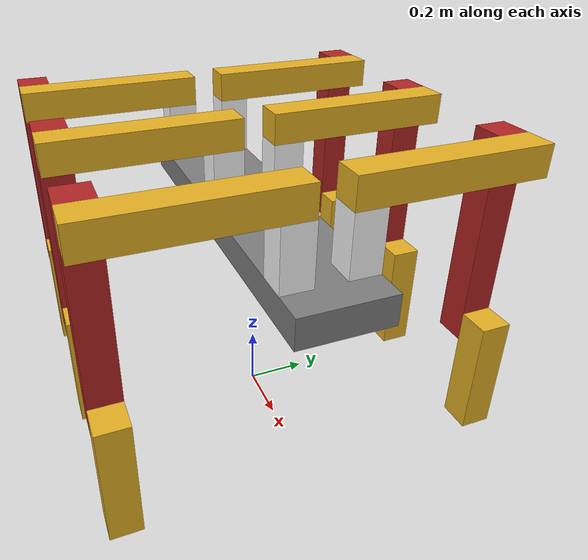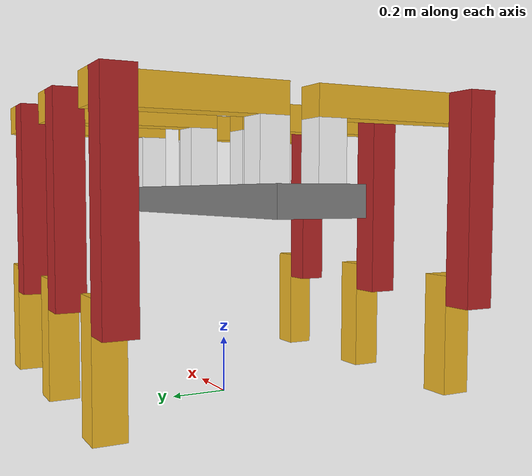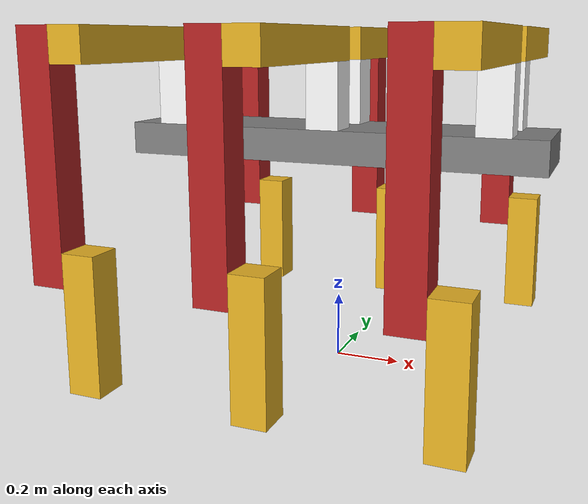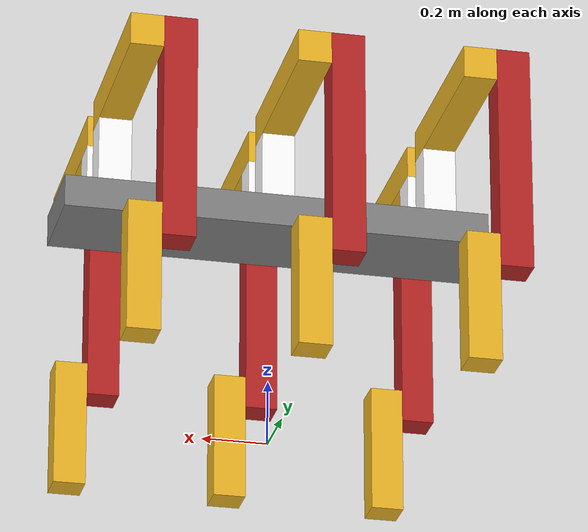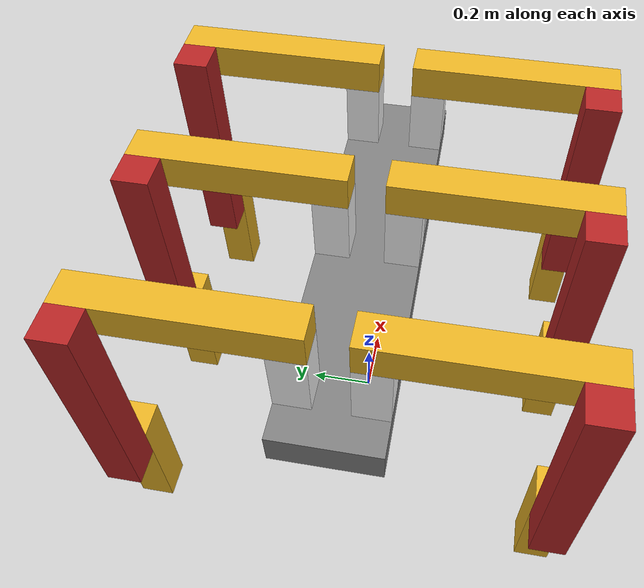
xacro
<?xml version="1.0"?>
<robot xmlns:xacro="http://www.ros.org/wiki/xacro" name="v0">

	<xacro:property name="VELOCITY" value="3.2"/>
	<xacro:property name="FRICTION" value="0"/>
	<xacro:property name="EFFORT" value="2048"/>
	<xacro:macro name="box" params="sizeX sizeY sizeZ color weight_multiplier:=160 *origin">
		<visual>
			<geometry>
				<box size="${sizeX} ${sizeY} ${sizeZ}" />
			</geometry>
			<material name="${color}" />
			<xacro:insert_block name="origin" />
		</visual>
		<collision>
			<geometry>
				<box size="${sizeX} ${sizeY} ${sizeZ}" />
			</geometry>
			<xacro:insert_block name="origin" />
        </collision>
		<inertial>
			<xacro:property name="weight" value="${sizeX * sizeY * sizeZ * 16 * weight_multiplier}"/>
			<mass value="${weight}"/>
			<inertia
				ixx="${1.0/12.0 * weight * (sizeZ * sizeZ + sizeY * sizeY)}"
				iyy="${1.0/12.0 * weight * (sizeZ * sizeZ + sizeX * sizeX)}"
				izz="${1.0/12.0 * weight * (sizeY * sizeY + sizeX * sizeX)}"
				ixy="0.0" ixz="0.0" iyz="0.0"/>
		</inertial>
	</xacro:macro>

	<xacro:macro name="leg" params="name reflect *origin">
		<link name="${name}_segment_1">
			<xacro:box sizeX="0.1" sizeY="0.1" sizeZ="0.2" color="white">
				<origin xyz="0 0 0.1" rpy="0 0 0" />
			</xacro:box>
		</link>

		<joint name="${name}_base_to_joint_1" type="fixed">
			<parent link="body" />
			<child link="${name}_segment_1" />
			<xacro:insert_block name="origin" />
			<dynamics damping="0.0" friction="${FRICTION}"/>
		</joint>

		<link name="${name}_segment_2_HIP">
			<xacro:box sizeX="0.1" sizeY="0.6" sizeZ="0.1" color="yellow">
				<origin xyz="0 ${reflect*0.25} 0" rpy="0 0 0" />
			</xacro:box>
		</link>

		<joint name="${name}_joint_1_to_2" type="revolute">
			<parent link="${name}_segment_1" />
			<child link="${name}_segment_2_HIP" />
			<origin xyz="0 0 0.25" rpy="0 0 0" />
			<axis xyz="0.0 0.0 1.0" />
			<limit effort="${EFFORT}" lower="-1.2" upper="1.2" velocity="${VELOCITY}"/>
			<dynamics damping="0.0" friction="${FRICTION}"/>
		</joint>

		<link name="${name}_segment_3_THIGH">
			<xacro:box sizeX="0.1" sizeY="0.1" sizeZ="0.7" color="red">
				<origin xyz="0 0 -0.3" rpy="0 0 0" />
			</xacro:box>
		</link>

		<joint name="${name}_joint_2_to_3" type="revolute">
			<parent link="${name}_segment_2_HIP" />
			<child link="${name}_segment_3_THIGH" />
			<origin xyz="-0.1 ${reflect*0.5} 0" rpy="0 0 0" />
			<axis xyz="1.0 0.0 0.0" />
			<xacro:if value="${reflect == -1}">
				<limit effort="${EFFORT}" lower="-0.75" upper="0.2" velocity="${VELOCITY}"/>
			</xacro:if>
			<xacro:unless value="${reflect == -1}">
				<limit effort="${EFFORT}" lower="-0.2" upper="0.75" velocity="${VELOCITY}"/>
			</xacro:unless>
			<dynamics damping="0.0" friction="${FRICTION}"/>
		</joint>

		<link name="${name}_segment_4_FOOT">
			<xacro:box sizeX="0.1" sizeY="0.1" sizeZ="0.4" color="yellow">
				<origin xyz="0 0 -0.2" rpy="0 0 0" />
			</xacro:box>
		</link>

		<joint name="${name}_joint_3_to_4_FOOT" type="revolute">
			<parent link="${name}_segment_3_THIGH" />
			<child link="${name}_segment_4_FOOT" />
			<origin xyz="0.1 0 -0.55" rpy="0 0 0" />
			<axis xyz="1.0 0.0 0.0" />
			<xacro:if value="${reflect == -1}">
				<limit effort="${EFFORT}" lower="-0.5" upper="0.2" velocity="${VELOCITY}"/>
			</xacro:if>
			<xacro:unless value="${reflect == -1}">
				<limit effort="${EFFORT}" lower="-0.2" upper="0.5" velocity="${VELOCITY}"/>
			</xacro:unless>
			<dynamics damping="0.0" friction="${FRICTION}"/>
		</joint>
	</xacro:macro>

	<material name="grey">
		<color rgba="0.5 0.5 0.5 1" />
	</material>

	<material name="white">
		<color rgba="1 1 1 1" />
	</material>

	<material name="yellow">
		<color rgba="0.91 0.7 0.14 1" />
	</material>

	<material name="red">
		<color rgba="0.71 0.14 0.14 1" />
	</material>

	<link name="body">
		<xacro:box sizeX="1.3" sizeY="0.3" sizeZ="0.1" color="grey">
			<origin xyz="0 0 0.7" rpy="0 0 0" />
		</xacro:box>
	</link>

	<xacro:leg name="l1" reflect="1">
		<origin xyz="0.5 0.1 .75" rpy="0 0 0" />
	</xacro:leg>

	<xacro:leg name="l2" reflect="1">
		<origin xyz="0 0.1 .75" rpy="0 0 0" />
	</xacro:leg>

	<xacro:leg name="l3" reflect="1">
		<origin xyz="-0.5 0.1 .75" rpy="0 0 0" />
	</xacro:leg>

	<xacro:leg name="r1" reflect="-1">
		<origin xyz="0.5 -0.1 .75" rpy="0 0 0" />
	</xacro:leg>

	<xacro:leg name="r2" reflect="-1">
		<origin xyz="0 -0.1 .75" rpy="0 0 0" />
	</xacro:leg>

	<xacro:leg name="r3" reflect="-1">
		<origin xyz="-0.5 -0.1 .75" rpy="0 0 0" />
	</xacro:leg>
</robot>
